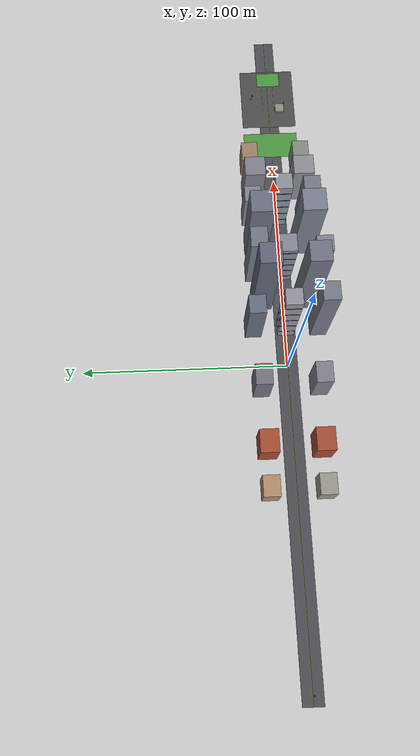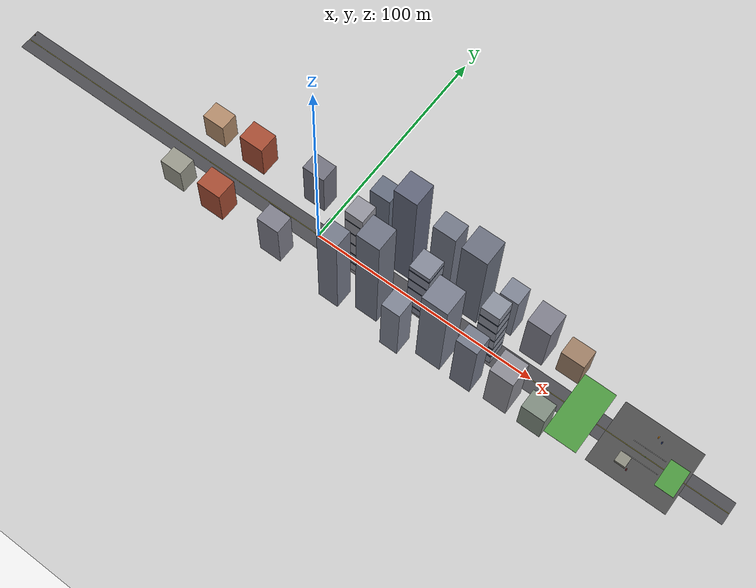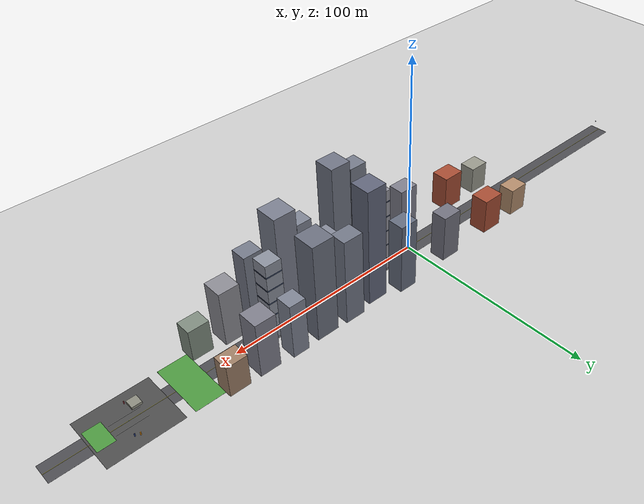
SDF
<sdf version="1.6">
 <world name="residential_delivery">
  <include><uri>model://sun</uri></include>
  <include><uri>model://ground_plane</uri></include>
  <scene>
   <ambient>0.6 0.6 0.6 1</ambient>
   <background>0.7 0.85 0.95 1</background>
   <shadows>false</shadows>
  </scene>
  <physics type="ode">
   <max_step_size>0.004</max_step_size>
   <real_time_factor>1.0</real_time_factor>
   <real_time_update_rate>250</real_time_update_rate>
  </physics>
  <plugin name="gazebo_ros_state" filename="libgazebo_ros_state.so">
   <ros><namespace>/gazebo</namespace></ros>
   <update_rate>50.0</update_rate>
  </plugin>
  <model name="road">
   <static>true</static>
   <pose>15 0 0.005 0 0 0</pose>
   <link name="l">
    <visual name="v">
     <geometry><box><size>340 10 0.02</size></box></geometry>
     <material><ambient>0.28 0.28 0.30 1</ambient><diffuse>0.30 0.30 0.32 1</diffuse></material>
    </visual>
   </link>
  </model>
  <model name="centerline">
   <static>true</static>
   <pose>15 0 0.02 0 0 0</pose>
   <link name="l">
    <visual name="v">
     <geometry><box><size>340 0.18 0.01</size></box></geometry>
     <material><ambient>0.9 0.85 0.3 1</ambient></material>
    </visual>
   </link>
  </model>
  <model name="midb_1">
   <static>true</static>
   <pose>-60 13 7 0 0 0</pose>
   <link name="l">
    <collision name="c"><geometry><box><size>10 8 14</size></box></geometry></collision>
    <visual name="v">
     <geometry><box><size>10 8 14</size></box></geometry>
     <material><ambient>0.65 0.5 0.4 1</ambient><diffuse>0.7 0.55 0.42 1</diffuse></material>
    </visual>
   </link>
  </model>
  <model name="midb_2">
   <static>true</static>
   <pose>-60 -13 7 0 0 0</pose>
   <link name="l">
    <collision name="c"><geometry><box><size>10 8 14</size></box></geometry></collision>
    <visual name="v">
     <geometry><box><size>10 8 14</size></box></geometry>
     <material><ambient>0.55 0.55 0.5 1</ambient><diffuse>0.6 0.6 0.55 1</diffuse></material>
    </visual>
   </link>
  </model>
  <model name="midb_3">
   <static>true</static>
   <pose>-40 13 9 0 0 0</pose>
   <link name="l">
    <collision name="c"><geometry><box><size>11 9 18</size></box></geometry></collision>
    <visual name="v">
     <geometry><box><size>11 9 18</size></box></geometry>
     <material>
      <script><uri>file://media/materials/scripts/gazebo.material</uri><name>Gazebo/Bricks</name></script>
      <ambient>0.6 0.42 0.32 1</ambient>
      <diffuse>0.65 0.46 0.34 1</diffuse>
     </material>
    </visual>
   </link>
  </model>
  <model name="midb_4">
   <static>true</static>
   <pose>-40 -13 9 0 0 0</pose>
   <link name="l">
    <collision name="c"><geometry><box><size>11 9 18</size></box></geometry></collision>
    <visual name="v">
     <geometry><box><size>11 9 18</size></box></geometry>
     <material>
      <script><uri>file://media/materials/scripts/gazebo.material</uri><name>Gazebo/Bricks</name></script>
      <ambient>0.5 0.5 0.55 1</ambient>
      <diffuse>0.55 0.55 0.6 1</diffuse>
     </material>
    </visual>
   </link>
  </model>
  <model name="t_enter_l">
   <static>true</static>
   <pose>-10 14 12 0 0 0</pose>
   <link name="l">
    <collision name="c"><geometry><box><size>10 8 24</size></box></geometry></collision>
    <visual name="v">
     <geometry><box><size>10 8 24</size></box></geometry>
     <material><ambient>0.42 0.42 0.48 1</ambient><diffuse>0.45 0.45 0.5 1</diffuse></material>
    </visual>
   </link>
  </model>
  <model name="t_enter_r">
   <static>true</static>
   <pose>-10 -14 12 0 0 0</pose>
   <link name="l">
    <collision name="c"><geometry><box><size>10 8 24</size></box></geometry></collision>
    <visual name="v">
     <geometry><box><size>10 8 24</size></box></geometry>
     <material><ambient>0.48 0.48 0.52 1</ambient><diffuse>0.5 0.5 0.55 1</diffuse></material>
    </visual>
   </link>
  </model>
  <model name="t_swerve1">
   <static>true</static>
   <pose>20 0 22 0 0 0</pose>
   <link name="l">
    <collision name="c"><geometry><box><size>8 8 44</size></box></geometry></collision>
    <visual name="v">
     <geometry><box><size>8 8 44</size></box></geometry>
     <material><ambient>0.55 0.55 0.6 1</ambient><diffuse>0.58 0.58 0.62 1</diffuse></material>
    </visual>
    <visual name="f1">
     <pose>0 0 -16 0 0 0</pose>
     <geometry><box><size>8.05 8.05 0.6</size></box></geometry>
     <material><ambient>0.15 0.18 0.25 1</ambient><diffuse>0.2 0.25 0.35 1</diffuse></material>
    </visual>
    <visual name="f2">
     <pose>0 0 -8 0 0 0</pose>
     <geometry><box><size>8.05 8.05 0.6</size></box></geometry>
     <material><ambient>0.15 0.18 0.25 1</ambient><diffuse>0.2 0.25 0.35 1</diffuse></material>
    </visual>
    <visual name="f3">
     <geometry><box><size>8.05 8.05 0.6</size></box></geometry>
     <material><ambient>0.15 0.18 0.25 1</ambient><diffuse>0.2 0.25 0.35 1</diffuse></material>
    </visual>
    <visual name="f4">
     <pose>0 0 8 0 0 0</pose>
     <geometry><box><size>8.05 8.05 0.6</size></box></geometry>
     <material><ambient>0.15 0.18 0.25 1</ambient><diffuse>0.2 0.25 0.35 1</diffuse></material>
    </visual>
    <visual name="f5">
     <pose>0 0 16 0 0 0</pose>
     <geometry><box><size>8.05 8.05 0.6</size></box></geometry>
     <material><ambient>0.15 0.18 0.25 1</ambient><diffuse>0.2 0.25 0.35 1</diffuse></material>
    </visual>
   </link>
  </model>
  <model name="t_side1_l">
   <static>true</static>
   <pose>20 16 18 0 0 0</pose>
   <link name="l">
    <collision name="c"><geometry><box><size>9 8 36</size></box></geometry></collision>
    <visual name="v">
     <geometry><box><size>9 8 36</size></box></geometry>
     <material><ambient>0.4 0.43 0.5 1</ambient></material>
    </visual>
   </link>
  </model>
  <model name="t_side1_r">
   <static>true</static>
   <pose>20 -16 25 0 0 0</pose>
   <link name="l">
    <collision name="c"><geometry><box><size>9 8 50</size></box></geometry></collision>
    <visual name="v">
     <geometry><box><size>9 8 50</size></box></geometry>
     <material><ambient>0.46 0.48 0.54 1</ambient></material>
    </visual>
   </link>
  </model>
  <model name="t_pair_l">
   <static>true</static>
   <pose>35 11 30 0 0 0</pose>
   <link name="l">
    <collision name="c"><geometry><box><size>10 10 60</size></box></geometry></collision>
    <visual name="v">
     <geometry><box><size>10 10 60</size></box></geometry>
     <material><ambient>0.38 0.4 0.48 1</ambient></material>
    </visual>
   </link>
  </model>
  <model name="t_pair_r">
   <static>true</static>
   <pose>35 -11 30 0 0 0</pose>
   <link name="l">
    <collision name="c"><geometry><box><size>10 10 60</size></box></geometry></collision>
    <visual name="v">
     <geometry><box><size>10 10 60</size></box></geometry>
     <material><ambient>0.44 0.46 0.52 1</ambient></material>
    </visual>
   </link>
  </model>
  <model name="t_swerve2">
   <static>true</static>
   <pose>50 0 18 0 0 0</pose>
   <link name="l">
    <collision name="c"><geometry><box><size>9 9 36</size></box></geometry></collision>
    <visual name="v">
     <geometry><box><size>9 9 36</size></box></geometry>
     <material><ambient>0.52 0.54 0.6 1</ambient></material>
    </visual>
    <visual name="f1">
     <pose>0 0 -13 0 0 0</pose>
     <geometry><box><size>9.05 9.05 0.6</size></box></geometry>
     <material><ambient>0.15 0.18 0.25 1</ambient><diffuse>0.22 0.27 0.4 1</diffuse></material>
    </visual>
    <visual name="f2">
     <pose>0 0 -6 0 0 0</pose>
     <geometry><box><size>9.05 9.05 0.6</size></box></geometry>
     <material><ambient>0.15 0.18 0.25 1</ambient><diffuse>0.22 0.27 0.4 1</diffuse></material>
    </visual>
    <visual name="f3">
     <pose>0 0 1 0 0 0</pose>
     <geometry><box><size>9.05 9.05 0.6</size></box></geometry>
     <material><ambient>0.15 0.18 0.25 1</ambient><diffuse>0.22 0.27 0.4 1</diffuse></material>
    </visual>
    <visual name="f4">
     <pose>0 0 8 0 0 0</pose>
     <geometry><box><size>9.05 9.05 0.6</size></box></geometry>
     <material><ambient>0.15 0.18 0.25 1</ambient><diffuse>0.22 0.27 0.4 1</diffuse></material>
    </visual>
    <visual name="f5">
     <pose>0 0 15 0 0 0</pose>
     <geometry><box><size>9.05 9.05 0.6</size></box></geometry>
     <material><ambient>0.15 0.18 0.25 1</ambient><diffuse>0.22 0.27 0.4 1</diffuse></material>
    </visual>
   </link>
  </model>
  <model name="t_side2_l">
   <static>true</static>
   <pose>50 14 22 0 0 0</pose>
   <link name="l">
    <collision name="c"><geometry><box><size>10 8 44</size></box></geometry></collision>
    <visual name="v">
     <geometry><box><size>10 8 44</size></box></geometry>
     <material><ambient>0.45 0.47 0.53 1</ambient></material>
    </visual>
   </link>
  </model>
  <model name="t_side2_r">
   <static>true</static>
   <pose>50 -18 17 0 0 0</pose>
   <link name="l">
    <collision name="c"><geometry><box><size>8 8 34</size></box></geometry></collision>
    <visual name="v">
     <geometry><box><size>8 8 34</size></box></geometry>
     <material><ambient>0.5 0.52 0.58 1</ambient></material>
    </visual>
   </link>
  </model>
  <model name="t_pair2_l">
   <static>true</static>
   <pose>65 12 25 0 0 0</pose>
   <link name="l">
    <collision name="c"><geometry><box><size>11 11 50</size></box></geometry></collision>
    <visual name="v">
     <geometry><box><size>11 11 50</size></box></geometry>
     <material><ambient>0.42 0.44 0.5 1</ambient></material>
    </visual>
   </link>
  </model>
  <model name="t_pair2_r">
   <static>true</static>
   <pose>65 -12 25 0 0 0</pose>
   <link name="l">
    <collision name="c"><geometry><box><size>11 11 50</size></box></geometry></collision>
    <visual name="v">
     <geometry><box><size>11 11 50</size></box></geometry>
     <material><ambient>0.48 0.5 0.56 1</ambient></material>
    </visual>
   </link>
  </model>
  <model name="t_swerve3">
   <static>true</static>
   <pose>80 0 20 0 0 0</pose>
   <link name="l">
    <collision name="c"><geometry><box><size>8 8 40</size></box></geometry></collision>
    <visual name="v">
     <geometry><box><size>8 8 40</size></box></geometry>
     <material><ambient>0.55 0.57 0.62 1</ambient></material>
    </visual>
    <visual name="f1">
     <pose>0 0 -14 0 0 0</pose>
     <geometry><box><size>8.05 8.05 0.6</size></box></geometry>
     <material><ambient>0.15 0.18 0.25 1</ambient><diffuse>0.22 0.28 0.4 1</diffuse></material>
    </visual>
    <visual name="f2">
     <pose>0 0 -7 0 0 0</pose>
     <geometry><box><size>8.05 8.05 0.6</size></box></geometry>
     <material><ambient>0.15 0.18 0.25 1</ambient><diffuse>0.22 0.28 0.4 1</diffuse></material>
    </visual>
    <visual name="f3">
     <geometry><box><size>8.05 8.05 0.6</size></box></geometry>
     <material><ambient>0.15 0.18 0.25 1</ambient><diffuse>0.22 0.28 0.4 1</diffuse></material>
    </visual>
    <visual name="f4">
     <pose>0 0 7 0 0 0</pose>
     <geometry><box><size>8.05 8.05 0.6</size></box></geometry>
     <material><ambient>0.15 0.18 0.25 1</ambient><diffuse>0.22 0.28 0.4 1</diffuse></material>
    </visual>
    <visual name="f5">
     <pose>0 0 14 0 0 0</pose>
     <geometry><box><size>8.05 8.05 0.6</size></box></geometry>
     <material><ambient>0.15 0.18 0.25 1</ambient><diffuse>0.22 0.28 0.4 1</diffuse></material>
    </visual>
   </link>
  </model>
  <model name="t_side3_l">
   <static>true</static>
   <pose>80 -14 18 0 0 0</pose>
   <link name="l">
    <collision name="c"><geometry><box><size>9 8 36</size></box></geometry></collision>
    <visual name="v">
     <geometry><box><size>9 8 36</size></box></geometry>
     <material><ambient>0.46 0.48 0.54 1</ambient></material>
    </visual>
   </link>
  </model>
  <model name="t_side3_r">
   <static>true</static>
   <pose>80 14 14 0 0 0</pose>
   <link name="l">
    <collision name="c"><geometry><box><size>8 8 28</size></box></geometry></collision>
    <visual name="v">
     <geometry><box><size>8 8 28</size></box></geometry>
     <material><ambient>0.5 0.52 0.58 1</ambient></material>
    </visual>
   </link>
  </model>
  <model name="t_exit_l">
   <static>true</static>
   <pose>95 12 14 0 0 0</pose>
   <link name="l">
    <collision name="c"><geometry><box><size>10 10 28</size></box></geometry></collision>
    <visual name="v">
     <geometry><box><size>10 10 28</size></box></geometry>
     <material><ambient>0.5 0.5 0.55 1</ambient></material>
    </visual>
   </link>
  </model>
  <model name="t_exit_r">
   <static>true</static>
   <pose>95 -12 14 0 0 0</pose>
   <link name="l">
    <collision name="c"><geometry><box><size>10 10 28</size></box></geometry></collision>
    <visual name="v">
     <geometry><box><size>10 10 28</size></box></geometry>
     <material><ambient>0.55 0.55 0.58 1</ambient></material>
    </visual>
   </link>
  </model>
  <model name="midb_5">
   <static>true</static>
   <pose>110 13 8 0 0 0</pose>
   <link name="l">
    <collision name="c"><geometry><box><size>10 8 16</size></box></geometry></collision>
    <visual name="v">
     <geometry><box><size>10 8 16</size></box></geometry>
     <material><ambient>0.62 0.5 0.4 1</ambient></material>
    </visual>
   </link>
  </model>
  <model name="midb_6">
   <static>true</static>
   <pose>110 -13 8 0 0 0</pose>
   <link name="l">
    <collision name="c"><geometry><box><size>10 8 16</size></box></geometry></collision>
    <visual name="v">
     <geometry><box><size>10 8 16</size></box></geometry>
     <material><ambient>0.5 0.55 0.5 1</ambient></material>
    </visual>
   </link>
  </model>
  <model name="park_grass">
   <static>true</static>
   <pose>122 0 0.02 0 0 0</pose>
   <link name="l">
    <visual name="v">
     <geometry><box><size>14 28 0.02</size></box></geometry>
     <material>
      <script><uri>file://media/materials/scripts/gazebo.material</uri><name>Gazebo/Grass</name></script>
      <ambient>0.22 0.5 0.22 1</ambient>
     </material>
    </visual>
   </link>
  </model>
  <model name="asphalt_zone">
   <static>true</static>
   <pose>150 0 0.01 0 0 0</pose>
   <link name="l">
    <visual name="v">
     <geometry><box><size>34 28 0.02</size></box></geometry>
     <material>
      <script><uri>file://media/materials/scripts/gazebo.material</uri><name>Gazebo/Road</name></script>
      <ambient>0.32 0.32 0.34 1</ambient>
     </material>
    </visual>
   </link>
  </model>
  <model name="lane_a">
   <static>true</static>
   <pose>150 3.0 0.03 0 0 0</pose>
   <link name="l">
    <visual name="v">
     <geometry><box><size>14 0.14 0.01</size></box></geometry>
     <material><ambient>0.9 0.9 0.9 1</ambient></material>
    </visual>
   </link>
  </model>
  <model name="lane_b">
   <static>true</static>
   <pose>150 -3.0 0.03 0 0 0</pose>
   <link name="l">
    <visual name="v">
     <geometry><box><size>14 0.14 0.01</size></box></geometry>
     <material><ambient>0.9 0.9 0.9 1</ambient></material>
    </visual>
   </link>
  </model>
  <model name="low_garage">
   <static>true</static>
   <pose>144 -6 0.65 0 0 0</pose>
   <link name="l">
    <collision name="c"><geometry><box><size>4.6 4.6 1.3</size></box></geometry></collision>
    <visual name="v">
     <geometry><box><size>4.6 4.6 1.3</size></box></geometry>
     <material><ambient>0.55 0.55 0.5 1</ambient></material>
    </visual>
   </link>
  </model>
  <model name="garden_grass">
   <static>true</static>
   <pose>162 -1 0.02 0 0 0</pose>
   <link name="l">
    <visual name="v">
     <geometry><box><size>8 12 0.02</size></box></geometry>
     <material>
      <script><uri>file://media/materials/scripts/gazebo.material</uri><name>Gazebo/Grass</name></script>
      <ambient>0.2 0.5 0.2 1</ambient>
     </material>
    </visual>
   </link>
  </model>
  <model name="person_1">
   <static>true</static>
   <pose>152 8 0.85 0 0 0</pose>
   <link name="l">
    <collision name="c">
     <geometry><cylinder><radius>0.25</radius><length>1.7</length></cylinder></geometry>
    </collision>
    <visual name="b">
     <geometry><cylinder><radius>0.25</radius><length>1.4</length></cylinder></geometry>
     <material><ambient>0.2 0.3 0.6 1</ambient></material>
    </visual>
    <visual name="h">
     <pose>0 0 0.9 0 0 0</pose>
     <geometry><sphere><radius>0.16</radius></sphere></geometry>
     <material><ambient>0.8 0.65 0.5 1</ambient></material>
    </visual>
   </link>
  </model>
  <model name="person_2">
   <static>true</static>
   <pose>147 -8.5 0.85 0 0 0</pose>
   <link name="l">
    <collision name="c">
     <geometry><cylinder><radius>0.25</radius><length>1.7</length></cylinder></geometry>
    </collision>
    <visual name="b">
     <geometry><cylinder><radius>0.25</radius><length>1.4</length></cylinder></geometry>
     <material><ambient>0.6 0.2 0.25 1</ambient></material>
    </visual>
    <visual name="h">
     <pose>0 0 0.9 0 0 0</pose>
     <geometry><sphere><radius>0.16</radius></sphere></geometry>
     <material><ambient>0.8 0.65 0.5 1</ambient></material>
    </visual>
   </link>
  </model>
  <model name="person_intruder">
   <static>false</static>
   <pose>150 9 0.85 0 0 0</pose>
   <link name="l">
    <gravity>false</gravity>
    <kinematic>true</kinematic>
    <inertial>
     <mass>1</mass>
     <inertia><ixx>0.1</ixx><iyy>0.1</iyy><izz>0.05</izz><ixy>0</ixy><ixz>0</ixz><iyz>0</iyz></inertia>
    </inertial>
    <collision name="c">
     <geometry><cylinder><radius>0.25</radius><length>1.7</length></cylinder></geometry>
    </collision>
    <visual name="b">
     <geometry><cylinder><radius>0.25</radius><length>1.4</length></cylinder></geometry>
     <material><ambient>0.9 0.55 0.05 1</ambient></material>
    </visual>
    <visual name="h">
     <pose>0 0 0.9 0 0 0</pose>
     <geometry><sphere><radius>0.16</radius></sphere></geometry>
     <material><ambient>0.8 0.65 0.5 1</ambient></material>
    </visual>
   </link>
  </model>
  <model name="delivery_target_marker">
   <static>true</static>
   <pose>150 0 0.12 0 0 0</pose>
   <link name="l">
    <visual name="v">
     <geometry><sphere><radius>0.12</radius></sphere></geometry>
     <material><ambient>0.1 0.85 0.2 0.8</ambient></material>
    </visual>
   </link>
  </model>
  <model name="delivery_drone">
   <pose>-150 0 7 0 0 0</pose>
   <link name="base_link">
    <gravity>false</gravity>
    <kinematic>true</kinematic>
    <inertial>
     <mass>1.6</mass>
     <inertia><ixx>0.03</ixx><iyy>0.03</iyy><izz>0.05</izz><ixy>0</ixy><ixz>0</ixz><iyz>0</iyz></inertia>
    </inertial>
    <visual name="body">
     <geometry><box><size>0.34 0.34 0.09</size></box></geometry>
     <material><ambient>0.13 0.13 0.16 1</ambient><diffuse>0.18 0.18 0.21 1</diffuse></material>
    </visual>
    <visual name="canopy">
     <pose>0 0 0.06 0 0 0</pose>
     <geometry><box><size>0.20 0.20 0.05</size></box></geometry>
     <material><ambient>0.85 0.45 0.1 1</ambient><diffuse>0.95 0.5 0.12 1</diffuse></material>
    </visual>
    <visual name="arm_a">
     <pose>0 0 0 0 0 0.785</pose>
     <geometry><box><size>0.60 0.035 0.022</size></box></geometry>
     <material><ambient>0.08 0.08 0.08 1</ambient></material>
    </visual>
    <visual name="arm_b">
     <pose>0 0 0 0 0 -0.785</pose>
     <geometry><box><size>0.60 0.035 0.022</size></box></geometry>
     <material><ambient>0.08 0.08 0.08 1</ambient></material>
    </visual>
    <visual name="motor_fl">
     <pose>0.21  0.21 0.03 0 0 0</pose>
     <geometry><cylinder><radius>0.03</radius><length>0.05</length></cylinder></geometry>
     <material><ambient>0.2 0.2 0.22 1</ambient></material>
    </visual>
    <visual name="motor_fr">
     <pose>0.21 -0.21 0.03 0 0 0</pose>
     <geometry><cylinder><radius>0.03</radius><length>0.05</length></cylinder></geometry>
     <material><ambient>0.2 0.2 0.22 1</ambient></material>
    </visual>
    <visual name="motor_bl">
     <pose>-0.21  0.21 0.03 0 0 0</pose>
     <geometry><cylinder><radius>0.03</radius><length>0.05</length></cylinder></geometry>
     <material><ambient>0.2 0.2 0.22 1</ambient></material>
    </visual>
    <visual name="motor_br">
     <pose>-0.21 -0.21 0.03 0 0 0</pose>
     <geometry><cylinder><radius>0.03</radius><length>0.05</length></cylinder></geometry>
     <material><ambient>0.2 0.2 0.22 1</ambient></material>
    </visual>
    <visual name="prop_fl">
     <pose>0.21  0.21 0.07 0 0 0</pose>
     <geometry><cylinder><radius>0.15</radius><length>0.008</length></cylinder></geometry>
     <material><ambient>0.4 0.4 0.45 0.55</ambient><diffuse>0.4 0.4 0.45 0.55</diffuse></material>
    </visual>
    <visual name="prop_fr">
     <pose>0.21 -0.21 0.07 0 0 0</pose>
     <geometry><cylinder><radius>0.15</radius><length>0.008</length></cylinder></geometry>
     <material><ambient>0.4 0.4 0.45 0.55</ambient><diffuse>0.4 0.4 0.45 0.55</diffuse></material>
    </visual>
    <visual name="prop_bl">
     <pose>-0.21  0.21 0.07 0 0 0</pose>
     <geometry><cylinder><radius>0.15</radius><length>0.008</length></cylinder></geometry>
     <material><ambient>0.4 0.4 0.45 0.55</ambient><diffuse>0.4 0.4 0.45 0.55</diffuse></material>
    </visual>
    <visual name="prop_br">
     <pose>-0.21 -0.21 0.07 0 0 0</pose>
     <geometry><cylinder><radius>0.15</radius><length>0.008</length></cylinder></geometry>
     <material><ambient>0.4 0.4 0.45 0.55</ambient><diffuse>0.4 0.4 0.45 0.55</diffuse></material>
    </visual>
    <visual name="leg_fl">
     <pose>0.12  0.12 -0.11 0 0 0</pose>
     <geometry><box><size>0.02 0.02 0.16</size></box></geometry>
     <material><ambient>0.1 0.1 0.1 1</ambient></material>
    </visual>
    <visual name="leg_fr">
     <pose>0.12 -0.12 -0.11 0 0 0</pose>
     <geometry><box><size>0.02 0.02 0.16</size></box></geometry>
     <material><ambient>0.1 0.1 0.1 1</ambient></material>
    </visual>
    <visual name="leg_bl">
     <pose>-0.12  0.12 -0.11 0 0 0</pose>
     <geometry><box><size>0.02 0.02 0.16</size></box></geometry>
     <material><ambient>0.1 0.1 0.1 1</ambient></material>
    </visual>
    <visual name="leg_br">
     <pose>-0.12 -0.12 -0.11 0 0 0</pose>
     <geometry><box><size>0.02 0.02 0.16</size></box></geometry>
     <material><ambient>0.1 0.1 0.1 1</ambient></material>
    </visual>
    <visual name="foot_f">
     <pose>0.12 0 -0.19 0 0 0</pose>
     <geometry><box><size>0.06 0.30 0.02</size></box></geometry>
     <material><ambient>0.1 0.1 0.1 1</ambient></material>
    </visual>
    <visual name="foot_b">
     <pose>-0.12 0 -0.19 0 0 0</pose>
     <geometry><box><size>0.06 0.30 0.02</size></box></geometry>
     <material><ambient>0.1 0.1 0.1 1</ambient></material>
    </visual>
    <visual name="gimbal">
     <pose>0 0 -0.085 0 0 0</pose>
     <geometry><sphere><radius>0.045</radius></sphere></geometry>
     <material><ambient>0.05 0.05 0.05 1</ambient></material>
    </visual>
    <visual name="parcel">
     <pose>-0.13 0 -0.05 0 0 0</pose>
     <geometry><box><size>0.13 0.13 0.11</size></box></geometry>
     <material><ambient>0.62 0.46 0.3 1</ambient><diffuse>0.7 0.52 0.34 1</diffuse></material>
    </visual>
    <sensor name="down_cam" type="camera">
     <pose>0.02 0 -0.12 0 1.5708 0</pose>
     <update_rate>15</update_rate>
     <camera>
      <horizontal_fov>1.396</horizontal_fov>
      <image><width>640</width><height>480</height><format>R8G8B8</format></image>
      <clip><near>0.1</near><far>400</far></clip>
     </camera>
     <plugin name="down_cam_plugin" filename="libgazebo_ros_camera.so">
      <ros><namespace>/drone</namespace></ros>
      <camera_name>down_cam</camera_name>
      <frame_name>down_cam_link</frame_name>
     </plugin>
    </sensor>
    <sensor name="down_depth" type="depth">
     <pose>0.02 0 -0.12 0 1.5708 0</pose>
     <update_rate>10</update_rate>
     <camera>
      <horizontal_fov>1.396</horizontal_fov>
      <image><width>320</width><height>240</height><format>R8G8B8</format></image>
      <clip><near>0.1</near><far>400</far></clip>
     </camera>
     <plugin name="down_depth_plugin" filename="libgazebo_ros_camera.so">
      <ros><namespace>/drone</namespace></ros>
      <camera_name>down_depth</camera_name>
      <frame_name>down_depth_link</frame_name>
      <min_depth>0.1</min_depth>
      <max_depth>400.0</max_depth>
     </plugin>
    </sensor>
    <sensor name="chase_cam" type="camera">
     <pose>-2.0 0 3.5 0 0.62 0</pose>
     <update_rate>15</update_rate>
     <camera>
      <horizontal_fov>1.5</horizontal_fov>
      <image><width>640</width><height>400</height><format>R8G8B8</format></image>
      <clip><near>0.05</near><far>500</far></clip>
     </camera>
     <plugin name="chase_cam_plugin" filename="libgazebo_ros_camera.so">
      <ros><namespace>/drone</namespace></ros>
      <camera_name>chase_cam</camera_name>
      <frame_name>chase_cam_link</frame_name>
     </plugin>
    </sensor>
    <sensor name="front_depth" type="depth">
     <pose>0.2 0 0 0 0 0</pose>
     <update_rate>10</update_rate>
     <camera>
      <horizontal_fov>1.5</horizontal_fov>
      <image><width>320</width><height>240</height><format>R8G8B8</format></image>
      <clip><near>0.3</near><far>200</far></clip>
     </camera>
     <plugin name="front_depth_plugin" filename="libgazebo_ros_camera.so">
      <ros><namespace>/drone</namespace></ros>
      <camera_name>front_depth</camera_name>
      <frame_name>front_depth_link</frame_name>
      <min_depth>0.3</min_depth>
      <max_depth>200.0</max_depth>
     </plugin>
    </sensor>
    <sensor name="iso_cam" type="camera">
     <pose>-4 3 6 0 0.7 -0.45</pose>
     <update_rate>15</update_rate>
     <camera>
      <horizontal_fov>1.4</horizontal_fov>
      <image><width>640</width><height>400</height><format>R8G8B8</format></image>
      <clip><near>0.05</near><far>500</far></clip>
     </camera>
     <plugin name="iso_cam_plugin" filename="libgazebo_ros_camera.so">
      <ros><namespace>/drone</namespace></ros>
      <camera_name>iso_cam</camera_name>
      <frame_name>iso_cam_link</frame_name>
     </plugin>
    </sensor>
   </link>
   <plugin name="drone_p3d" filename="libgazebo_ros_p3d.so">
    <ros><namespace>/drone</namespace><remapping>odom:=odom</remapping></ros>
    <body_name>base_link</body_name>
    <frame_name>world</frame_name>
    <update_rate>50</update_rate>
   </plugin>
  </model>
 </world>
</sdf>
